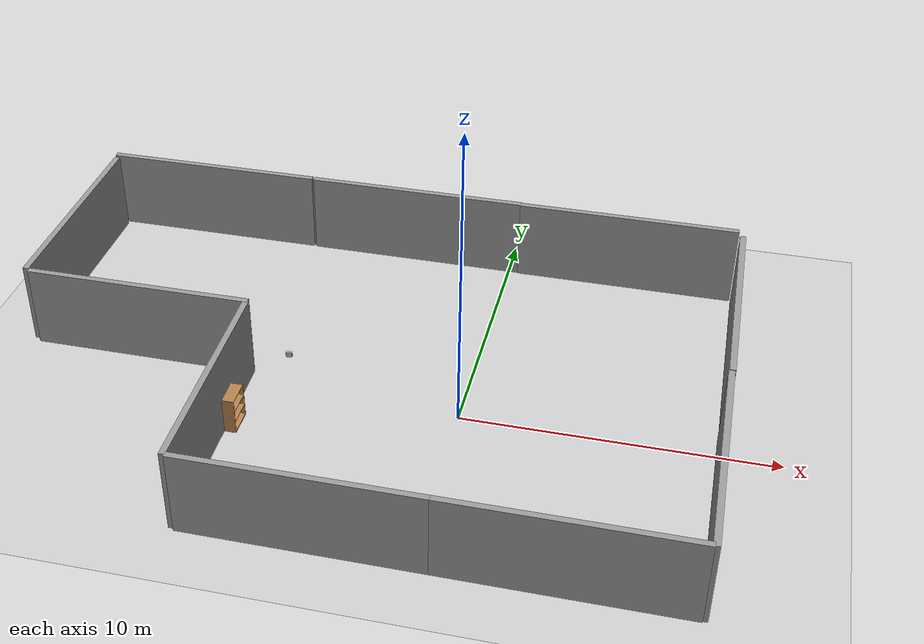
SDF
<sdf version="1.7">
 <world name="default">
  <light name="sun" type="directional">
   <pose>0 0 10 0 -0 0</pose>
   <diffuse>0.8 0.8 0.8 1</diffuse>
   <specular>0.2 0.2 0.2 1</specular>
   <attenuation>
    <range>1000</range>
    <constant>0.9</constant>
    <linear>0.01</linear>
    <quadratic>0.001</quadratic>
   </attenuation>
   <direction>-0.5 0.1 -0.9</direction>
   <spot><inner_angle>0</inner_angle><outer_angle>0</outer_angle><falloff>0</falloff></spot>
  </light>
  <model name="ground_plane">
   <static>1</static>
   <link name="link">
    <collision name="collision">
     <geometry><plane><normal>0 0 1</normal><size>100 100</size></plane></geometry>
     <surface><friction><ode><mu>100</mu><mu2>50</mu2></ode></friction></surface>
    </collision>
    <visual name="visual">
     <cast_shadows>0</cast_shadows>
     <geometry><plane><normal>0 0 1</normal><size>100 100</size></plane></geometry>
     <material>
      <script><uri>file://media/materials/scripts/gazebo.material</uri><name>Gazebo/Grey</name></script>
     </material>
    </visual>
   </link>
  </model>
  <gravity>0 0 -9.8</gravity>
  <magnetic_field>6e-06 2.3e-05 -4.2e-05</magnetic_field>
  <atmosphere type="adiabatic"/>
  <physics type="ode">
   <max_step_size>0.001</max_step_size>
   <real_time_factor>1</real_time_factor>
   <real_time_update_rate>1000</real_time_update_rate>
  </physics>
  <scene><ambient>0.4 0.4 0.4 1</ambient><background>0.7 0.7 0.7 1</background><shadows>1</shadows></scene>
  <spherical_coordinates>
   <surface_model>EARTH_WGS84</surface_model>
   <latitude_deg>0</latitude_deg>
   <longitude_deg>0</longitude_deg>
   <elevation>0</elevation>
   <heading_deg>0</heading_deg>
  </spherical_coordinates>
  <light name="user_directional_light_1" type="directional">
   <pose>-11.4461 8.1371 1 0 -0 0</pose>
   <diffuse>0.5 0.5 0.5 1</diffuse>
   <specular>0.1 0.1 0.1 1</specular>
   <direction>0.1 0.1 -0.9</direction>
   <attenuation>
    <range>20</range>
    <constant>0.5</constant>
    <linear>0.01</linear>
    <quadratic>0.001</quadratic>
   </attenuation>
   <spot><inner_angle>0</inner_angle><outer_angle>0</outer_angle><falloff>0</falloff></spot>
  </light>
  <light name="user_directional_light_4" type="directional">
   <pose>-1.99105 17.873 1 0 -0 0</pose>
   <diffuse>0.5 0.5 0.5 1</diffuse>
   <specular>0.1 0.1 0.1 1</specular>
   <direction>0.1 0.1 -0.9</direction>
   <attenuation>
    <range>20</range>
    <constant>0.5</constant>
    <linear>0.01</linear>
    <quadratic>0.001</quadratic>
   </attenuation>
   <spot><inner_angle>0</inner_angle><outer_angle>0</outer_angle><falloff>0</falloff></spot>
  </light>
  <model name="grey_wall_clone">
   <static>1</static>
   <link name="link">
    <pose>0 0 1.4 0 -0 0</pose>
    <collision name="collision"><geometry><box><size>7.5 0.2 2.8</size></box></geometry></collision>
    <visual name="visual">
     <cast_shadows>0</cast_shadows>
     <geometry><box><size>7.5 0.2 2.8</size></box></geometry>
     <material>
      <script>
       <uri>model://grey_wall/materials/scripts</uri>
       <uri>model://grey_wall/materials/textures</uri>
       <name>vrc/grey_wall</name>
      </script>
     </material>
    </visual>
   </link>
   <pose>-3.43309 8.57524 0 0 -0 0</pose>
  </model>
  <model name="grey_wall_clone_2">
   <static>1</static>
   <link name="link">
    <pose>0 0 1.4 0 -0 0</pose>
    <collision name="collision"><geometry><box><size>7.5 0.2 2.8</size></box></geometry></collision>
    <visual name="visual">
     <cast_shadows>0</cast_shadows>
     <geometry><box><size>7.5 0.2 2.8</size></box></geometry>
     <material>
      <script>
       <uri>model://grey_wall/materials/scripts</uri>
       <uri>model://grey_wall/materials/textures</uri>
       <name>vrc/grey_wall</name>
      </script>
     </material>
    </visual>
   </link>
   <pose>-3.10049 -6.71855 0 0 -0 0</pose>
  </model>
  <model name="grey_wall_clone_3">
   <static>1</static>
   <link name="link">
    <pose>0 0 1.4 0 -0 0</pose>
    <collision name="collision"><geometry><box><size>7.5 0.2 2.8</size></box></geometry></collision>
    <visual name="visual">
     <cast_shadows>0</cast_shadows>
     <geometry><box><size>7.5 0.2 2.8</size></box></geometry>
     <material>
      <script>
       <uri>model://grey_wall/materials/scripts</uri>
       <uri>model://grey_wall/materials/textures</uri>
       <name>vrc/grey_wall</name>
      </script>
     </material>
    </visual>
   </link>
   <pose>4.37076 -6.71871 0 0 -0 0</pose>
  </model>
  <model name="grey_wall_clone_4">
   <static>1</static>
   <link name="link">
    <pose>0 0 1.4 0 -0 0</pose>
    <collision name="collision"><geometry><box><size>7.5 0.2 2.8</size></box></geometry></collision>
    <visual name="visual">
     <cast_shadows>0</cast_shadows>
     <geometry><box><size>7.5 0.2 2.8</size></box></geometry>
     <material>
      <script>
       <uri>model://grey_wall/materials/scripts</uri>
       <uri>model://grey_wall/materials/textures</uri>
       <name>vrc/grey_wall</name>
      </script>
     </material>
    </visual>
   </link>
   <pose>8.10912 -3.0285 0 0 0 -1.55662</pose>
  </model>
  <model name="grey_wall_clone_4_clone">
   <static>1</static>
   <link name="link">
    <pose>0 0 1.4 0 -0 0</pose>
    <collision name="collision"><geometry><box><size>7.5 0.2 2.8</size></box></geometry></collision>
    <visual name="visual">
     <cast_shadows>0</cast_shadows>
     <geometry><box><size>7.5 0.2 2.8</size></box></geometry>
     <material>
      <script>
       <uri>model://grey_wall/materials/scripts</uri>
       <uri>model://grey_wall/materials/textures</uri>
       <name>vrc/grey_wall</name>
      </script>
     </material>
    </visual>
   </link>
   <pose>8.00785 4.49769 0 0 0 -1.5521</pose>
  </model>
  <model name="grey_wall_clone_4_clone_0">
   <static>1</static>
   <link name="link">
    <pose>0 0 1.4 0 -0 0</pose>
    <collision name="collision"><geometry><box><size>7.5 0.2 2.8</size></box></geometry></collision>
    <visual name="visual">
     <cast_shadows>0</cast_shadows>
     <geometry><box><size>7.5 0.2 2.8</size></box></geometry>
     <material>
      <script>
       <uri>model://grey_wall/materials/scripts</uri>
       <uri>model://grey_wall/materials/textures</uri>
       <name>vrc/grey_wall</name>
      </script>
     </material>
    </visual>
   </link>
   <pose>-6.99713 -2.98753 0 0 0 -1.5521</pose>
  </model>
  <model name="grey_wall_clone_clone">
   <static>1</static>
   <link name="link">
    <pose>0 0 1.4 0 -0 0</pose>
    <collision name="collision"><geometry><box><size>7.5 0.2 2.8</size></box></geometry></collision>
    <visual name="visual">
     <cast_shadows>0</cast_shadows>
     <geometry><box><size>7.5 0.2 2.8</size></box></geometry>
     <material>
      <script>
       <uri>model://grey_wall/materials/scripts</uri>
       <uri>model://grey_wall/materials/textures</uri>
       <name>vrc/grey_wall</name>
      </script>
     </material>
    </visual>
   </link>
   <pose>-11.0017 8.58398 0 0 -0 0</pose>
  </model>
  <model name="grey_wall_clone_clone_0">
   <static>1</static>
   <link name="link">
    <pose>0 0 1.4 0 -0 0</pose>
    <collision name="collision"><geometry><box><size>7.5 0.2 2.8</size></box></geometry></collision>
    <visual name="visual">
     <cast_shadows>0</cast_shadows>
     <geometry><box><size>7.5 0.2 2.8</size></box></geometry>
     <material>
      <script>
       <uri>model://grey_wall/materials/scripts</uri>
       <uri>model://grey_wall/materials/textures</uri>
       <name>vrc/grey_wall</name>
      </script>
     </material>
    </visual>
   </link>
   <pose>-10.7594 0.787879 0 0 -0 0</pose>
  </model>
  <light name="user_point_light_0" type="point">
   <pose>26.8068 -65.7611 1 0 -0 0</pose>
   <diffuse>0.5 0.5 0.5 1</diffuse>
   <specular>0.1 0.1 0.1 1</specular>
   <attenuation>
    <range>20</range>
    <constant>0.5</constant>
    <linear>0.01</linear>
    <quadratic>0.001</quadratic>
   </attenuation>
   <cast_shadows>0</cast_shadows>
   <direction>0 0 -1</direction>
   <spot><inner_angle>0</inner_angle><outer_angle>0</outer_angle><falloff>0</falloff></spot>
  </light>
  <model name="bookshelf">
   <static>1</static>
   <link name="link">
    <inertial><mass>1</mass></inertial>
    <collision name="back">
     <pose>0 0.005 0.6 0 -0 0</pose>
     <geometry><box><size>0.9 0.01 1.2</size></box></geometry>
    </collision>
    <visual name="visual1">
     <pose>0 0.005 0.6 0 -0 0</pose>
     <geometry><box><size>0.9 0.01 1.2</size></box></geometry>
     <material>
      <script><uri>file://media/materials/scripts/gazebo.material</uri><name>Gazebo/Wood</name></script>
     </material>
    </visual>
    <collision name="left_side">
     <pose>0.45 -0.195 0.6 0 -0 0</pose>
     <geometry><box><size>0.02 0.4 1.2</size></box></geometry>
    </collision>
    <visual name="visual2">
     <pose>0.45 -0.195 0.6 0 -0 0</pose>
     <geometry><box><size>0.02 0.4 1.2</size></box></geometry>
     <material>
      <script><uri>file://media/materials/scripts/gazebo.material</uri><name>Gazebo/Wood</name></script>
     </material>
    </visual>
    <collision name="right_side">
     <pose>-0.45 -0.195 0.6 0 -0 0</pose>
     <geometry><box><size>0.02 0.4 1.2</size></box></geometry>
    </collision>
    <visual name="visual3">
     <pose>-0.45 -0.195 0.6 0 -0 0</pose>
     <geometry><box><size>0.02 0.4 1.2</size></box></geometry>
     <material>
      <script><uri>file://media/materials/scripts/gazebo.material</uri><name>Gazebo/Wood</name></script>
     </material>
    </visual>
    <collision name="bottom">
     <pose>0 -0.195 0.03 0 -0 0</pose>
     <geometry><box><size>0.88 0.4 0.06</size></box></geometry>
    </collision>
    <visual name="visual4">
     <pose>0 -0.195 0.03 0 -0 0</pose>
     <geometry><box><size>0.88 0.4 0.06</size></box></geometry>
     <material>
      <script><uri>file://media/materials/scripts/gazebo.material</uri><name>Gazebo/Wood</name></script>
     </material>
    </visual>
    <collision name="top">
     <pose>0 -0.195 1.19 0 -0 0</pose>
     <geometry><box><size>0.88 0.4 0.02</size></box></geometry>
    </collision>
    <visual name="visual5">
     <pose>0 -0.195 1.19 0 -0 0</pose>
     <geometry><box><size>0.88 0.4 0.02</size></box></geometry>
     <material>
      <script><uri>file://media/materials/scripts/gazebo.material</uri><name>Gazebo/Wood</name></script>
     </material>
    </visual>
    <collision name="low_shelf">
     <pose>0 -0.195 0.43 0 -0 0</pose>
     <geometry><box><size>0.88 0.4 0.02</size></box></geometry>
    </collision>
    <visual name="visual6">
     <pose>0 -0.195 0.43 0 -0 0</pose>
     <geometry><box><size>0.88 0.4 0.02</size></box></geometry>
     <material>
      <script><uri>file://media/materials/scripts/gazebo.material</uri><name>Gazebo/Wood</name></script>
     </material>
    </visual>
    <collision name="high_shelf">
     <pose>0 -0.195 0.8 0 -0 0</pose>
     <geometry><box><size>0.88 0.4 0.02</size></box></geometry>
    </collision>
    <visual name="visual7">
     <pose>0 -0.195 0.8 0 -0 0</pose>
     <geometry><box><size>0.88 0.4 0.02</size></box></geometry>
     <material>
      <script><uri>file://media/materials/scripts/gazebo.material</uri><name>Gazebo/Wood</name></script>
     </material>
    </visual>
   </link>
   <pose>-6.92575 -1.85532 0 0 -0 1.57707</pose>
  </model>
  <model name="grey_wall_clone_4_clone_0_clone">
   <static>1</static>
   <link name="link">
    <pose>0 0 1.4 0 -0 0</pose>
    <collision name="collision"><geometry><box><size>7.5 0.2 2.8</size></box></geometry></collision>
    <visual name="visual">
     <cast_shadows>0</cast_shadows>
     <geometry><box><size>7.5 0.2 2.8</size></box></geometry>
     <material>
      <script>
       <uri>model://grey_wall/materials/scripts</uri>
       <uri>model://grey_wall/materials/textures</uri>
       <name>vrc/grey_wall</name>
      </script>
     </material>
    </visual>
   </link>
   <pose>-14.6315 4.59366 0 0 0 -1.57292</pose>
  </model>
  <light name="user_directional_light_0" type="directional">
   <pose>16.7803 1.58455 1 0 -0 0</pose>
   <diffuse>0.5 0.5 0.5 1</diffuse>
   <specular>0.1 0.1 0.1 1</specular>
   <direction>0.1 0.1 -0.9</direction>
   <attenuation>
    <range>20</range>
    <constant>0.5</constant>
    <linear>0.01</linear>
    <quadratic>0.001</quadratic>
   </attenuation>
   <spot><inner_angle>0</inner_angle><outer_angle>0</outer_angle><falloff>0</falloff></spot>
  </light>
  <model name="grey_wall_clone_clone_1">
   <static>1</static>
   <link name="link">
    <pose>0 0 1.4 0 -0 0</pose>
    <collision name="collision"><geometry><box><size>7.5 0.2 2.8</size></box></geometry></collision>
    <visual name="visual">
     <cast_shadows>0</cast_shadows>
     <geometry><box><size>7.5 0.2 2.8</size></box></geometry>
     <material>
      <script>
       <uri>model://grey_wall/materials/scripts</uri>
       <uri>model://grey_wall/materials/textures</uri>
       <name>vrc/grey_wall</name>
      </script>
     </material>
    </visual>
   </link>
   <pose>4.05127 8.54714 0 0 -0 0</pose>
  </model>
  <model name="Apriltag36_11_00000">
   <link name="main">
    <visual name="main_Visual">
     <geometry><box><size>0.2 0.199976 0.178448</size></box></geometry>
     <material>
      <script>
       <uri>model://Apriltag36_11_00000/materials/scripts</uri>
       <uri>model://Apriltag36_11_00000/materials/textures</uri>
       <name>Apriltag36_11_00000</name>
      </script>
     </material>
    </visual>
   </link>
   <static>1</static>
   <pose>-8.9429 2.78702 0.127453 0.028992 -0 0</pose>
  </model>
  <model name="Apriltag36_11_00008">
   <link name="main">
    <visual name="main_Visual">
     <geometry><box><size>0.200024 0.2 0.0789014</size></box></geometry>
     <material>
      <script>
       <uri>model://Apriltag36_11_00008/materials/scripts</uri>
       <uri>model://Apriltag36_11_00008/materials/textures</uri>
       <name>Apriltag36_11_00008</name>
      </script>
     </material>
    </visual>
   </link>
   <static>1</static>
   <pose>-6.10752 1.76778 0.12622 -1.47116 -0.004086 0.027525</pose>
  </model>
  <model name="Apriltag36_11_00010">
   <link name="main">
    <visual name="main_Visual">
     <geometry><box><size>0.200014 0.199999 0.134267</size></box></geometry>
     <material>
      <script>
       <uri>model://Apriltag36_11_00010/materials/scripts</uri>
       <uri>model://Apriltag36_11_00010/materials/textures</uri>
       <name>Apriltag36_11_00010</name>
      </script>
     </material>
    </visual>
   </link>
   <static>1</static>
   <pose>-7.74512 1.53651 0.111249 0.010601 -0.057149 1.38728</pose>
  </model>
 </world>
</sdf>
